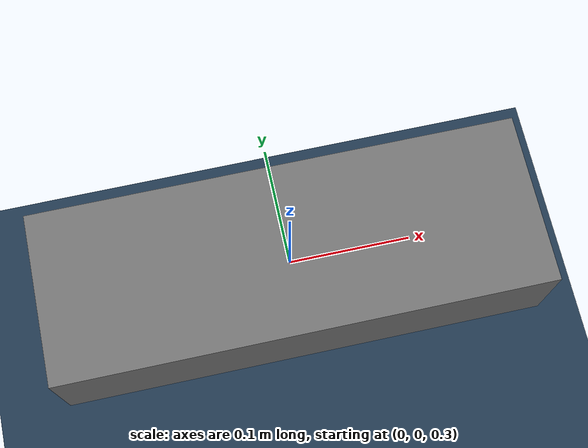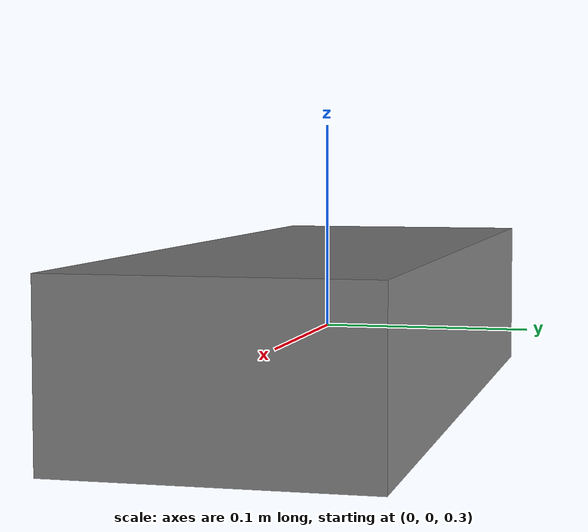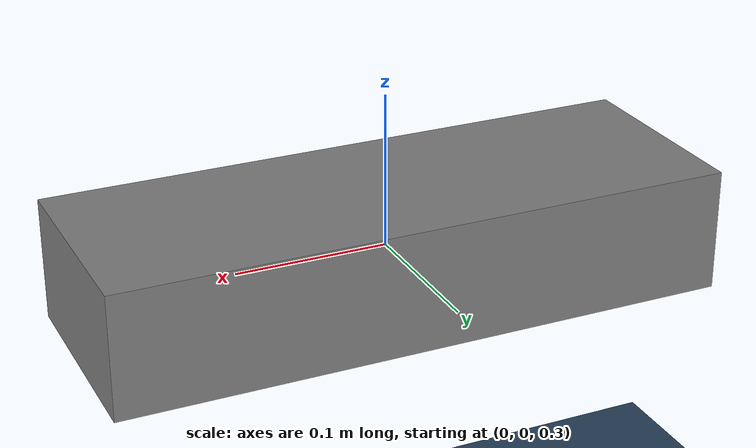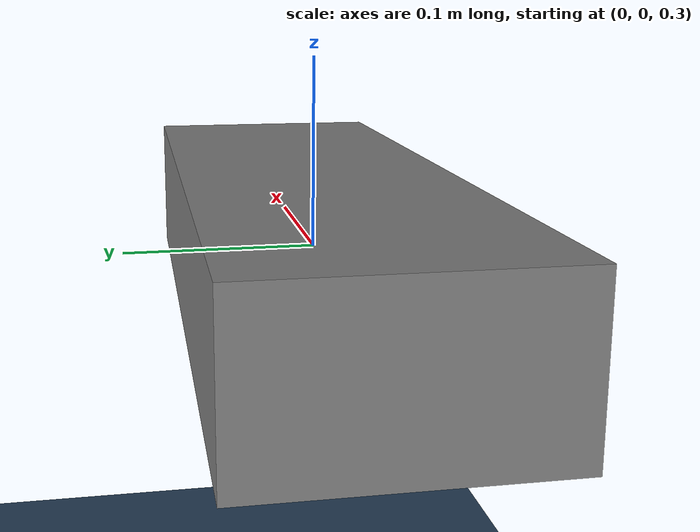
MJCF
<?xml version="1.0" ?>
<mujoco model="Unnamed Robot">
  <compiler/>
  <option timestep="0.002" integrator="RK4"/>
  <visual>
    <headlight diffuse="0.6 0.6 0.6" ambient="0.3 0.3 0.3" specular="0 0 0"/>
    <map znear="0.01"/>
    <quality shadowsize="4096"/>
    <global offwidth="2560" offheight="1440"/>
  </visual>
  <asset>
    <texture type="skybox" builtin="gradient" rgb1="0.3 0.5 0.7" rgb2="0 0 0" width="512" height="3072"/>
    <texture type="2d" name="groundplane" builtin="checker" mark="edge" rgb1="0.2 0.3 0.4" rgb2="0.1 0.2 0.3" markrgb="0.8 0.8 0.8" width="300" height="300"/>
    <material name="groundplane" texture="groundplane" texuniform="true" texrepeat="5 5" reflectance="0.2"/>
  </asset>
  <default/>
  <worldbody>
    <geom name="ground" type="plane" size="5 5 0.1" material="groundplane" condim="3" friction="1.0 0.1 0.1"/>
    <light pos="0 0 1.5" dir="0 0 -1" diffuse="0.8 0.8 0.8" specular="0.1 0.1 0.1" castshadow="true"/>
    <body name="torso" pos="0 0 0.3">
      <freejoint name="root"/>
      <geom type="box" size="0.2 0.07 0.04" mass="5.0"/>
    </body>
  </worldbody>
  <actuator/>
  <sensor/>
</mujoco>
